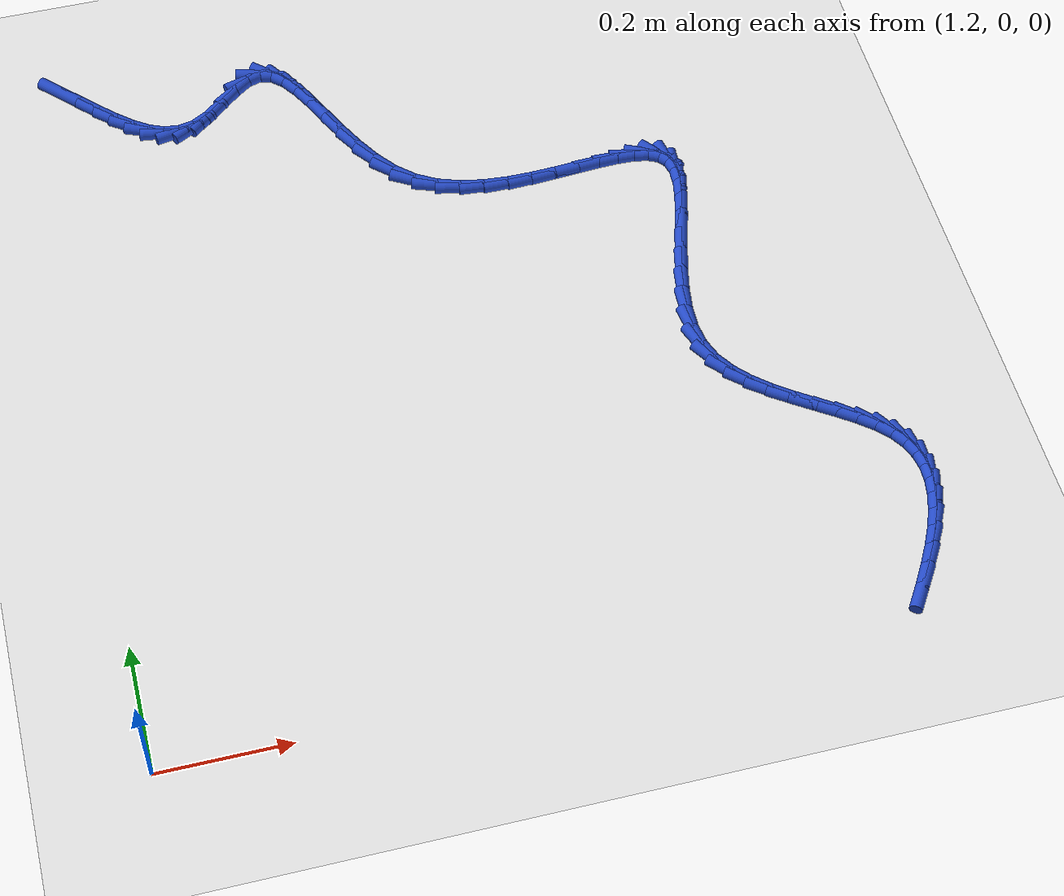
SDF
<sdf version="1.6">
 <world name="default">
  <model name="ground_plane">
   <static>1</static>
   <link name="link">
    <collision name="collision">
     <geometry><plane><normal>0 0 1</normal><size>100 100</size></plane></geometry>
     <surface><friction><ode><mu>100</mu><mu2>50</mu2></ode></friction></surface>
    </collision>
    <visual name="visual">
     <cast_shadows>0</cast_shadows>
     <geometry><plane><normal>0 0 1</normal><size>100 100</size></plane></geometry>
     <material>
      <script><uri>file://media/materials/scripts/gazebo.material</uri><name>Gazebo/WhiteGlow</name></script>
     </material>
    </visual>
   </link>
  </model>
  <model name="line">
   <link name="link_67">
    <pose>1.2538343814853161 1.2382673829130102 0.01 0 1.57 -0.785566757976279</pose>
    <collision name="collision">
     <geometry><cylinder><radius>0.01</radius><length>0.08</length></cylinder></geometry>
    </collision>
    <visual name="visual">
     <material>
      <script><name>Gazebo/Blue</name><uri>file://media/materials/scripts/gazebo.material</uri></script>
     </material>
     <geometry><cylinder><radius>0.01</radius><length>0.08</length></cylinder></geometry>
    </visual>
   </link>
   <link name="link_68">
    <pose>1.28186383717866 1.2102284743973273 0.01 0 1.57 -0.7882382605085606</pose>
    <collision name="collision">
     <geometry><cylinder><radius>0.01</radius><length>0.08</length></cylinder></geometry>
    </collision>
    <visual name="visual">
     <material>
      <script><name>Gazebo/Blue</name><uri>file://media/materials/scripts/gazebo.material</uri></script>
     </material>
     <geometry><cylinder><radius>0.01</radius><length>0.08</length></cylinder></geometry>
    </visual>
   </link>
   <link name="link_69">
    <pose>1.3083163606724577 1.1836252670705516 0.01 0 1.57 -0.7618387460049367</pose>
    <collision name="collision">
     <geometry><cylinder><radius>0.01</radius><length>0.08</length></cylinder></geometry>
    </collision>
    <visual name="visual">
     <material>
      <script><name>Gazebo/Blue</name><uri>file://media/materials/scripts/gazebo.material</uri></script>
     </material>
     <geometry><cylinder><radius>0.01</radius><length>0.08</length></cylinder></geometry>
    </visual>
   </link>
   <link name="link_70">
    <pose>1.333560056549744 1.1595438570009098 0.01 0 1.57 -0.6980593438315549</pose>
    <collision name="collision">
     <geometry><cylinder><radius>0.01</radius><length>0.08</length></cylinder></geometry>
    </collision>
    <visual name="visual">
     <material>
      <script><name>Gazebo/Blue</name><uri>file://media/materials/scripts/gazebo.material</uri></script>
     </material>
     <geometry><cylinder><radius>0.01</radius><length>0.08</length></cylinder></geometry>
    </visual>
   </link>
   <link name="link_71">
    <pose>1.3579630293935534 1.1390703402566276 0.01 0 1.57 -0.5829506277651483</pose>
    <collision name="collision">
     <geometry><cylinder><radius>0.01</radius><length>0.08</length></cylinder></geometry>
    </collision>
    <visual name="visual">
     <material>
      <script><name>Gazebo/Blue</name><uri>file://media/materials/scripts/gazebo.material</uri></script>
     </material>
     <geometry><cylinder><radius>0.01</radius><length>0.08</length></cylinder></geometry>
    </visual>
   </link>
   <link name="link_72">
    <pose>1.381893383786919 1.123290812905931 0.01 0 1.57 -0.39736355007476176</pose>
    <collision name="collision">
     <geometry><cylinder><radius>0.01</radius><length>0.08</length></cylinder></geometry>
    </collision>
    <visual name="visual">
     <material>
      <script><name>Gazebo/Blue</name><uri>file://media/materials/scripts/gazebo.material</uri></script>
     </material>
     <geometry><cylinder><radius>0.01</radius><length>0.08</length></cylinder></geometry>
    </visual>
   </link>
   <link name="link_73">
    <pose>1.4057192243128758 1.1132913710170473 0.01 0 1.57 -0.12934171890205653</pose>
    <collision name="collision">
     <geometry><cylinder><radius>0.01</radius><length>0.08</length></cylinder></geometry>
    </collision>
    <visual name="visual">
     <material>
      <script><name>Gazebo/Blue</name><uri>file://media/materials/scripts/gazebo.material</uri></script>
     </material>
     <geometry><cylinder><radius>0.01</radius><length>0.08</length></cylinder></geometry>
    </visual>
   </link>
   <link name="link_74">
    <pose>1.4298086555544565 1.1101581106582024 0.01 0 1.57 0.19252083070281928</pose>
    <collision name="collision">
     <geometry><cylinder><radius>0.01</radius><length>0.08</length></cylinder></geometry>
    </collision>
    <visual name="visual">
     <material>
      <script><name>Gazebo/Blue</name><uri>file://media/materials/scripts/gazebo.material</uri></script>
     </material>
     <geometry><cylinder><radius>0.01</radius><length>0.08</length></cylinder></geometry>
    </visual>
   </link>
   <link name="link_75">
    <pose>1.4545297820946967 1.114977127897623 0.01 0 1.57 0.49342976665261934</pose>
    <collision name="collision">
     <geometry><cylinder><radius>0.01</radius><length>0.08</length></cylinder></geometry>
    </collision>
    <visual name="visual">
     <material>
      <script><name>Gazebo/Blue</name><uri>file://media/materials/scripts/gazebo.material</uri></script>
     </material>
     <geometry><cylinder><radius>0.01</radius><length>0.08</length></cylinder></geometry>
    </visual>
   </link>
   <link name="link_76">
    <pose>1.4802450763413812 1.128806859006717 0.01 0 1.57 0.6768735097541512</pose>
    <collision name="collision">
     <geometry><cylinder><radius>0.01</radius><length>0.08</length></cylinder></geometry>
    </collision>
    <visual name="visual">
     <material>
      <script><name>Gazebo/Blue</name><uri>file://media/materials/scripts/gazebo.material</uri></script>
     </material>
     <geometry><cylinder><radius>0.01</radius><length>0.08</length></cylinder></geometry>
    </visual>
   </link>
   <link name="link_77">
    <pose>1.5067944361874352 1.1501393597260332 0.01 0 1.57 0.7126994125406223</pose>
    <collision name="collision">
     <geometry><cylinder><radius>0.01</radius><length>0.08</length></cylinder></geometry>
    </collision>
    <visual name="visual">
     <material>
      <script><name>Gazebo/Blue</name><uri>file://media/materials/scripts/gazebo.material</uri></script>
     </material>
     <geometry><cylinder><radius>0.01</radius><length>0.08</length></cylinder></geometry>
    </visual>
   </link>
   <link name="link_78">
    <pose>1.5330787400544876 1.1728551304662964 0.01 0 1.57 0.6140378748856712</pose>
    <collision name="collision">
     <geometry><cylinder><radius>0.01</radius><length>0.08</length></cylinder></geometry>
    </collision>
    <visual name="visual">
     <material>
      <script><name>Gazebo/Blue</name><uri>file://media/materials/scripts/gazebo.material</uri></script>
     </material>
     <geometry><cylinder><radius>0.01</radius><length>0.08</length></cylinder></geometry>
    </visual>
   </link>
   <link name="link_79">
    <pose>1.557900867419528 1.1903533956165042 0.01 0 1.57 0.27306151013533486</pose>
    <collision name="collision">
     <geometry><cylinder><radius>0.01</radius><length>0.08</length></cylinder></geometry>
    </collision>
    <visual name="visual">
     <material>
      <script><name>Gazebo/Blue</name><uri>file://media/materials/scripts/gazebo.material</uri></script>
     </material>
     <geometry><cylinder><radius>0.01</radius><length>0.08</length></cylinder></geometry>
    </visual>
   </link>
   <link name="link_80">
    <pose>1.5801864595808888 1.1965946305407702 0.01 0 1.57 -0.28771847170197257</pose>
    <collision name="collision">
     <geometry><cylinder><radius>0.01</radius><length>0.08</length></cylinder></geometry>
    </collision>
    <visual name="visual">
     <material>
      <script><name>Gazebo/Blue</name><uri>file://media/materials/scripts/gazebo.material</uri></script>
     </material>
     <geometry><cylinder><radius>0.01</radius><length>0.08</length></cylinder></geometry>
    </visual>
   </link>
   <link name="link_81">
    <pose>1.5999969731963049 1.190732109724542 0.01 0 1.57 -0.7264145257541991</pose>
    <collision name="collision">
     <geometry><cylinder><radius>0.01</radius><length>0.08</length></cylinder></geometry>
    </collision>
    <visual name="visual">
     <material>
      <script><name>Gazebo/Blue</name><uri>file://media/materials/scripts/gazebo.material</uri></script>
     </material>
     <geometry><cylinder><radius>0.01</radius><length>0.08</length></cylinder></geometry>
    </visual>
   </link>
   <link name="link_82">
    <pose>1.6180085126071329 1.174729196392626 0.01 0 1.57 -0.9604016139994076</pose>
    <collision name="collision">
     <geometry><cylinder><radius>0.01</radius><length>0.08</length></cylinder></geometry>
    </collision>
    <visual name="visual">
     <material>
      <script><name>Gazebo/Blue</name><uri>file://media/materials/scripts/gazebo.material</uri></script>
     </material>
     <geometry><cylinder><radius>0.01</radius><length>0.08</length></cylinder></geometry>
    </visual>
   </link>
   <link name="link_83">
    <pose>1.634903222737844 1.1505768705249946 0.01 0 1.57 -1.073310563239943</pose>
    <collision name="collision">
     <geometry><cylinder><radius>0.01</radius><length>0.08</length></cylinder></geometry>
    </collision>
    <visual name="visual">
     <material>
      <script><name>Gazebo/Blue</name><uri>file://media/materials/scripts/gazebo.material</uri></script>
     </material>
     <geometry><cylinder><radius>0.01</radius><length>0.08</length></cylinder></geometry>
    </visual>
   </link>
   <link name="link_84">
    <pose>1.6513632485129093 1.1202661121016202 0.01 0 1.57 -1.1195598222980059</pose>
    <collision name="collision">
     <geometry><cylinder><radius>0.01</radius><length>0.08</length></cylinder></geometry>
    </collision>
    <visual name="visual">
     <material>
      <script><name>Gazebo/Blue</name><uri>file://media/materials/scripts/gazebo.material</uri></script>
     </material>
     <geometry><cylinder><radius>0.01</radius><length>0.08</length></cylinder></geometry>
    </visual>
   </link>
   <link name="link_85">
    <pose>1.6680707348568007 1.0857879011024745 0.01 0 1.57 -1.1223268118400533</pose>
    <collision name="collision">
     <geometry><cylinder><radius>0.01</radius><length>0.08</length></cylinder></geometry>
    </collision>
    <visual name="visual">
     <material>
      <script><name>Gazebo/Blue</name><uri>file://media/materials/scripts/gazebo.material</uri></script>
     </material>
     <geometry><cylinder><radius>0.01</radius><length>0.08</length></cylinder></geometry>
    </visual>
   </link>
   <link name="link_86">
    <pose>1.6857078266939896 1.0491332175075307 0.01 0 1.57 -1.0893143593907815</pose>
    <collision name="collision">
     <geometry><cylinder><radius>0.01</radius><length>0.08</length></cylinder></geometry>
    </collision>
    <visual name="visual">
     <material>
      <script><name>Gazebo/Blue</name><uri>file://media/materials/scripts/gazebo.material</uri></script>
     </material>
     <geometry><cylinder><radius>0.01</radius><length>0.08</length></cylinder></geometry>
    </visual>
   </link>
   <link name="link_87">
    <pose>1.7049566689489473 1.0122930412967608 0.01 0 1.57 -1.019494839847143</pose>
    <collision name="collision">
     <geometry><cylinder><radius>0.01</radius><length>0.08</length></cylinder></geometry>
    </collision>
    <visual name="visual">
     <material>
      <script><name>Gazebo/Blue</name><uri>file://media/materials/scripts/gazebo.material</uri></script>
     </material>
     <geometry><cylinder><radius>0.01</radius><length>0.08</length></cylinder></geometry>
    </visual>
   </link>
   <link name="link_88">
    <pose>1.7264994065461452 0.977258352450137 0.01 0 1.57 -0.9053327829608843</pose>
    <collision name="collision">
     <geometry><cylinder><radius>0.01</radius><length>0.08</length></cylinder></geometry>
    </collision>
    <visual name="visual">
     <material>
      <script><name>Gazebo/Blue</name><uri>file://media/materials/scripts/gazebo.material</uri></script>
     </material>
     <geometry><cylinder><radius>0.01</radius><length>0.08</length></cylinder></geometry>
    </visual>
   </link>
   <link name="link_89">
    <pose>1.7510181844100556 0.9460201309476319 0.01 0 1.57 -0.7347056852846849</pose>
    <collision name="collision">
     <geometry><cylinder><radius>0.01</radius><length>0.08</length></cylinder></geometry>
    </collision>
    <visual name="visual">
     <material>
      <script><name>Gazebo/Blue</name><uri>file://media/materials/scripts/gazebo.material</uri></script>
     </material>
     <geometry><cylinder><radius>0.01</radius><length>0.08</length></cylinder></geometry>
    </visual>
   </link>
   <link name="link_90">
    <pose>1.7791933573349288 0.9205658966634219 0.01 0 1.57 -0.5236528981676696</pose>
    <collision name="collision">
     <geometry><cylinder><radius>0.01</radius><length>0.08</length></cylinder></geometry>
    </collision>
    <visual name="visual">
     <material>
      <script><name>Gazebo/Blue</name><uri>file://media/materials/scripts/gazebo.material</uri></script>
     </material>
     <geometry><cylinder><radius>0.01</radius><length>0.08</length></cylinder></geometry>
    </visual>
   </link>
   <link name="link_91">
    <pose>1.8112709154444293 0.9020435949551331 0.01 0 1.57 -0.33770255946773026</pose>
    <collision name="collision">
     <geometry><cylinder><radius>0.01</radius><length>0.08</length></cylinder></geometry>
    </collision>
    <visual name="visual">
     <material>
      <script><name>Gazebo/Blue</name><uri>file://media/materials/scripts/gazebo.material</uri></script>
     </material>
     <geometry><cylinder><radius>0.01</radius><length>0.08</length></cylinder></geometry>
    </visual>
   </link>
   <link name="link_92">
    <pose>1.8464992892119563 0.8896730086989127 0.01 0 1.57 -0.19151743830005274</pose>
    <collision name="collision">
     <geometry><cylinder><radius>0.01</radius><length>0.08</length></cylinder></geometry>
    </collision>
    <visual name="visual">
     <material>
      <script><name>Gazebo/Blue</name><uri>file://media/materials/scripts/gazebo.material</uri></script>
     </material>
     <geometry><cylinder><radius>0.01</radius><length>0.08</length></cylinder></geometry>
    </visual>
   </link>
   <link name="link_93">
    <pose>1.88398741299645 0.8824042916072453 0.01 0 1.57 -0.082594951936038</pose>
    <collision name="collision">
     <geometry><cylinder><radius>0.01</radius><length>0.08</length></cylinder></geometry>
    </collision>
    <visual name="visual">
     <material>
      <script><name>Gazebo/Blue</name><uri>file://media/materials/scripts/gazebo.material</uri></script>
     </material>
     <geometry><cylinder><radius>0.01</radius><length>0.08</length></cylinder></geometry>
    </visual>
   </link>
   <link name="link_94">
    <pose>1.9228442211568515 0.8791875973926139 0.01 0 1.57 -0.00545363223273143</pose>
    <collision name="collision">
     <geometry><cylinder><radius>0.01</radius><length>0.08</length></cylinder></geometry>
    </collision>
    <visual name="visual">
     <material>
      <script><name>Gazebo/Blue</name><uri>file://media/materials/scripts/gazebo.material</uri></script>
     </material>
     <geometry><cylinder><radius>0.01</radius><length>0.08</length></cylinder></geometry>
    </visual>
   </link>
   <link name="link_95">
    <pose>1.9621786480521008 0.8789730797675025 0.01 0 1.57 0.044620130874636565</pose>
    <collision name="collision">
     <geometry><cylinder><radius>0.01</radius><length>0.08</length></cylinder></geometry>
    </collision>
    <visual name="visual">
     <material>
      <script><name>Gazebo/Blue</name><uri>file://media/materials/scripts/gazebo.material</uri></script>
     </material>
     <geometry><cylinder><radius>0.01</radius><length>0.08</length></cylinder></geometry>
    </visual>
   </link>
   <link name="link_96">
    <pose>2.00109962804114 0.8807108924443945 0.01 0 1.57 0.07007498911915154</pose>
    <collision name="collision">
     <geometry><cylinder><radius>0.01</radius><length>0.08</length></cylinder></geometry>
    </collision>
    <visual name="visual">
     <material>
      <script><name>Gazebo/Blue</name><uri>file://media/materials/scripts/gazebo.material</uri></script>
     </material>
     <geometry><cylinder><radius>0.01</radius><length>0.08</length></cylinder></geometry>
    </visual>
   </link>
   <link name="link_97">
    <pose>2.03871609548291 0.8833511891357735 0.01 0 1.57 0.07026448233679902</pose>
    <collision name="collision">
     <geometry><cylinder><radius>0.01</radius><length>0.08</length></cylinder></geometry>
    </collision>
    <visual name="visual">
     <material>
      <script><name>Gazebo/Blue</name><uri>file://media/materials/scripts/gazebo.material</uri></script>
     </material>
     <geometry><cylinder><radius>0.01</radius><length>0.08</length></cylinder></geometry>
    </visual>
   </link>
   <link name="link_98">
    <pose>2.074136984736351 0.8858441235541231 0.01 0 1.57 0.040051435700480364</pose>
    <collision name="collision">
     <geometry><cylinder><radius>0.01</radius><length>0.08</length></cylinder></geometry>
    </collision>
    <visual name="visual">
     <material>
      <script><name>Gazebo/Blue</name><uri>file://media/materials/scripts/gazebo.material</uri></script>
     </material>
     <geometry><cylinder><radius>0.01</radius><length>0.08</length></cylinder></geometry>
    </visual>
   </link>
   <link name="link_99">
    <pose>2.106471230160404 0.887139849411927 0.01 0 1.57 -0.03353626542487102</pose>
    <collision name="collision">
     <geometry><cylinder><radius>0.01</radius><length>0.08</length></cylinder></geometry>
    </collision>
    <visual name="visual">
     <material>
      <script><name>Gazebo/Blue</name><uri>file://media/materials/scripts/gazebo.material</uri></script>
     </material>
     <geometry><cylinder><radius>0.01</radius><length>0.08</length></cylinder></geometry>
    </visual>
   </link>
   <link name="link_100">
    <pose>2.1348277661140105 0.8861885204216685 0.01 0 1.57 -0.17893545830406263</pose>
    <collision name="collision">
     <geometry><cylinder><radius>0.01</radius><length>0.08</length></cylinder></geometry>
    </collision>
    <visual name="visual">
     <material>
      <script><name>Gazebo/Blue</name><uri>file://media/materials/scripts/gazebo.material</uri></script>
     </material>
     <geometry><cylinder><radius>0.01</radius><length>0.08</length></cylinder></geometry>
    </visual>
   </link>
   <link name="link_101">
    <pose>2.1583155269561107 0.8819402902958317 0.01 0 1.57 -0.4514358436486448</pose>
    <collision name="collision">
     <geometry><cylinder><radius>0.01</radius><length>0.08</length></cylinder></geometry>
    </collision>
    <visual name="visual">
     <material>
      <script><name>Gazebo/Blue</name><uri>file://media/materials/scripts/gazebo.material</uri></script>
     </material>
     <geometry><cylinder><radius>0.01</radius><length>0.08</length></cylinder></geometry>
    </visual>
   </link>
   <link name="link_102">
    <pose>2.176043447045646 0.8733453127468996 0.01 0 1.57 -0.9001134383795548</pose>
    <collision name="collision">
     <geometry><cylinder><radius>0.01</radius><length>0.08</length></cylinder></geometry>
    </collision>
    <visual name="visual">
     <material>
      <script><name>Gazebo/Blue</name><uri>file://media/materials/scripts/gazebo.material</uri></script>
     </material>
     <geometry><cylinder><radius>0.01</radius><length>0.08</length></cylinder></geometry>
    </visual>
   </link>
   <link name="link_103">
    <pose>2.18713429291404 0.8593658356881354 0.01 0 1.57 -1.3524003817196848</pose>
    <collision name="collision">
     <geometry><cylinder><radius>0.01</radius><length>0.08</length></cylinder></geometry>
    </collision>
    <visual name="visual">
     <material>
      <script><name>Gazebo/Blue</name><uri>file://media/materials/scripts/gazebo.material</uri></script>
     </material>
     <geometry><cylinder><radius>0.01</radius><length>0.08</length></cylinder></geometry>
    </visual>
   </link>
   <link name="link_104">
    <pose>2.191507560521084 0.839660729756795 0.01 0 1.57 1.5219206567587855</pose>
    <collision name="collision">
     <geometry><cylinder><radius>0.01</radius><length>0.08</length></cylinder></geometry>
    </collision>
    <visual name="visual">
     <material>
      <script><name>Gazebo/Blue</name><uri>file://media/materials/scripts/gazebo.material</uri></script>
     </material>
     <geometry><cylinder><radius>0.01</radius><length>0.08</length></cylinder></geometry>
    </visual>
   </link>
   <link name="link_105">
    <pose>2.190298955051684 0.814952261710799 0.01 0 1.57 1.3809874458709517</pose>
    <collision name="collision">
     <geometry><cylinder><radius>0.01</radius><length>0.08</length></cylinder></geometry>
    </collision>
    <visual name="visual">
     <material>
      <script><name>Gazebo/Blue</name><uri>file://media/materials/scripts/gazebo.material</uri></script>
     </material>
     <geometry><cylinder><radius>0.01</radius><length>0.08</length></cylinder></geometry>
    </visual>
   </link>
   <link name="link_106">
    <pose>2.1847466439241625 0.7860522864638533 0.01 0 1.57 1.3087498475771182</pose>
    <collision name="collision">
     <geometry><cylinder><radius>0.01</radius><length>0.08</length></cylinder></geometry>
    </collision>
    <visual name="visual">
     <material>
      <script><name>Gazebo/Blue</name><uri>file://media/materials/scripts/gazebo.material</uri></script>
     </material>
     <geometry><cylinder><radius>0.01</radius><length>0.08</length></cylinder></geometry>
    </visual>
   </link>
   <link name="link_107">
    <pose>2.176088794556841 0.753772658929664 0.01 0 1.57 1.2774715504518177</pose>
    <collision name="collision">
     <geometry><cylinder><radius>0.01</radius><length>0.08</length></cylinder></geometry>
    </collision>
    <visual name="visual">
     <material>
      <script><name>Gazebo/Blue</name><uri>file://media/materials/scripts/gazebo.material</uri></script>
     </material>
     <geometry><cylinder><radius>0.01</radius><length>0.08</length></cylinder></geometry>
    </visual>
   </link>
   <link name="link_108">
    <pose>2.165563574368041 0.7189252340219373 0.01 0 1.57 1.2749987658873705</pose>
    <collision name="collision">
     <geometry><cylinder><radius>0.01</radius><length>0.08</length></cylinder></geometry>
    </collision>
    <visual name="visual">
     <material>
      <script><name>Gazebo/Blue</name><uri>file://media/materials/scripts/gazebo.material</uri></script>
     </material>
     <geometry><cylinder><radius>0.01</radius><length>0.08</length></cylinder></geometry>
    </visual>
   </link>
   <link name="link_109">
    <pose>2.154409150776083 0.6823218666543788 0.01 0 1.57 1.2969932521439491</pose>
    <collision name="collision">
     <geometry><cylinder><radius>0.01</radius><length>0.08</length></cylinder></geometry>
    </collision>
    <visual name="visual">
     <material>
      <script><name>Gazebo/Blue</name><uri>file://media/materials/scripts/gazebo.material</uri></script>
     </material>
     <geometry><cylinder><radius>0.01</radius><length>0.08</length></cylinder></geometry>
    </visual>
   </link>
   <link name="link_110">
    <pose>2.14386369119929 0.6447744117406947 0.01 0 1.57 1.3439214933272465</pose>
    <collision name="collision">
     <geometry><cylinder><radius>0.01</radius><length>0.08</length></cylinder></geometry>
    </collision>
    <visual name="visual">
     <material>
      <script><name>Gazebo/Blue</name><uri>file://media/materials/scripts/gazebo.material</uri></script>
     </material>
     <geometry><cylinder><radius>0.01</radius><length>0.08</length></cylinder></geometry>
    </visual>
   </link>
   <link name="link_111">
    <pose>2.1351653630559815 0.6070947241945909 0.01 0 1.57 1.4202410493724342</pose>
    <collision name="collision">
     <geometry><cylinder><radius>0.01</radius><length>0.08</length></cylinder></geometry>
    </collision>
    <visual name="visual">
     <material>
      <script><name>Gazebo/Blue</name><uri>file://media/materials/scripts/gazebo.material</uri></script>
     </material>
     <geometry><cylinder><radius>0.01</radius><length>0.08</length></cylinder></geometry>
    </visual>
   </link>
   <link name="link_112">
    <pose>2.129552333764481 0.5700946589297733 0.01 0 1.57 1.5344953473322347</pose>
    <collision name="collision">
     <geometry><cylinder><radius>0.01</radius><length>0.08</length></cylinder></geometry>
    </collision>
    <visual name="visual">
     <material>
      <script><name>Gazebo/Blue</name><uri>file://media/materials/scripts/gazebo.material</uri></script>
     </material>
     <geometry><cylinder><radius>0.01</radius><length>0.08</length></cylinder></geometry>
    </visual>
   </link>
   <link name="link_113">
    <pose>2.1282627707431083 0.5345860708599487 0.01 0 1.57 -1.4428427610111758</pose>
    <collision name="collision">
     <geometry><cylinder><radius>0.01</radius><length>0.08</length></cylinder></geometry>
    </collision>
    <visual name="visual">
     <material>
      <script><name>Gazebo/Blue</name><uri>file://media/materials/scripts/gazebo.material</uri></script>
     </material>
     <geometry><cylinder><radius>0.01</radius><length>0.08</length></cylinder></geometry>
    </visual>
   </link>
   <link name="link_114">
    <pose>2.132534841410186 0.5013808148988219 0.01 0 1.57 -1.2225296229217635</pose>
    <collision name="collision">
     <geometry><cylinder><radius>0.01</radius><length>0.08</length></cylinder></geometry>
    </collision>
    <visual name="visual">
     <material>
      <script><name>Gazebo/Blue</name><uri>file://media/materials/scripts/gazebo.material</uri></script>
     </material>
     <geometry><cylinder><radius>0.01</radius><length>0.08</length></cylinder></geometry>
    </visual>
   </link>
   <link name="link_115">
    <pose>2.143482142351235 0.4712284004880938 0.01 0 1.57 -1.0036013262684376</pose>
    <collision name="collision">
     <geometry><cylinder><radius>0.01</radius><length>0.08</length></cylinder></geometry>
    </collision>
    <visual name="visual">
     <material>
      <script><name>Gazebo/Blue</name><uri>file://media/materials/scripts/gazebo.material</uri></script>
     </material>
     <geometry><cylinder><radius>0.01</radius><length>0.08</length></cylinder></geometry>
    </visual>
   </link>
   <link name="link_116">
    <pose>2.1607391733387304 0.4441380755902887 0.01 0 1.57 -0.8339720589544165</pose>
    <collision name="collision">
     <geometry><cylinder><radius>0.01</radius><length>0.08</length></cylinder></geometry>
    </collision>
    <visual name="visual">
     <material>
      <script><name>Gazebo/Blue</name><uri>file://media/materials/scripts/gazebo.material</uri></script>
     </material>
     <geometry><cylinder><radius>0.01</radius><length>0.08</length></cylinder></geometry>
    </visual>
   </link>
   <link name="link_117">
    <pose>2.182971267966476 0.4196340378435261 0.01 0 1.57 -0.7139525091937021</pose>
    <collision name="collision">
     <geometry><cylinder><radius>0.01</radius><length>0.08</length></cylinder></geometry>
    </collision>
    <visual name="visual">
     <material>
      <script><name>Gazebo/Blue</name><uri>file://media/materials/scripts/gazebo.material</uri></script>
     </material>
     <geometry><cylinder><radius>0.01</radius><length>0.08</length></cylinder></geometry>
    </visual>
   </link>
   <link name="link_118">
    <pose>2.2088269237744105 0.39723205874233153 0.01 0 1.57 -0.6363725312759138</pose>
    <collision name="collision">
     <geometry><cylinder><radius>0.01</radius><length>0.08</length></cylinder></geometry>
    </collision>
    <visual name="visual">
     <material>
      <script><name>Gazebo/Blue</name><uri>file://media/materials/scripts/gazebo.material</uri></script>
     </material>
     <geometry><cylinder><radius>0.01</radius><length>0.08</length></cylinder></geometry>
    </visual>
   </link>
   <link name="link_119">
    <pose>2.236954638302474 0.37644790978123127 0.01 0 1.57 -0.5947650792054809</pose>
    <collision name="collision">
     <geometry><cylinder><radius>0.01</radius><length>0.08</length></cylinder></geometry>
    </collision>
    <visual name="visual">
     <material>
      <script><name>Gazebo/Blue</name><uri>file://media/materials/scripts/gazebo.material</uri></script>
     </material>
     <geometry><cylinder><radius>0.01</radius><length>0.08</length></cylinder></geometry>
    </visual>
   </link>
   <link name="link_120">
    <pose>2.2660029090906066 0.35679736245475113 0.01 0 1.57 -0.5861364892936376</pose>
    <collision name="collision">
     <geometry><cylinder><radius>0.01</radius><length>0.08</length></cylinder></geometry>
    </collision>
    <visual name="visual">
     <material>
      <script><name>Gazebo/Blue</name><uri>file://media/materials/scripts/gazebo.material</uri></script>
     </material>
     <geometry><cylinder><radius>0.01</radius><length>0.08</length></cylinder></geometry>
    </visual>
   </link>
   <link name="link_121">
    <pose>2.294620233678749 0.3377961882574171 0.01 0 1.57 -0.6120157262769792</pose>
    <collision name="collision">
     <geometry><cylinder><radius>0.01</radius><length>0.08</length></cylinder></geometry>
    </collision>
    <visual name="visual">
     <material>
      <script><name>Gazebo/Blue</name><uri>file://media/materials/scripts/gazebo.material</uri></script>
     </material>
     <geometry><cylinder><radius>0.01</radius><length>0.08</length></cylinder></geometry>
    </visual>
   </link>
   <link name="link_122">
    <pose>2.3214551096068394 0.3189601586837548 0.01 0 1.57 -0.6797216449581143</pose>
    <collision name="collision">
     <geometry><cylinder><radius>0.01</radius><length>0.08</length></cylinder></geometry>
    </collision>
    <visual name="visual">
     <material>
      <script><name>Gazebo/Blue</name><uri>file://media/materials/scripts/gazebo.material</uri></script>
     </material>
     <geometry><cylinder><radius>0.01</radius><length>0.08</length></cylinder></geometry>
    </visual>
   </link>
   <link name="link_123">
    <pose>2.345156034414818 0.2998050452282906 0.01 0 1.57 -0.8043452122651773</pose>
    <collision name="collision">
     <geometry><cylinder><radius>0.01</radius><length>0.08</length></cylinder></geometry>
    </collision>
    <visual name="visual">
     <material>
      <script><name>Gazebo/Blue</name><uri>file://media/materials/scripts/gazebo.material</uri></script>
     </material>
     <geometry><cylinder><radius>0.01</radius><length>0.08</length></cylinder></geometry>
    </visual>
   </link>
   <link name="link_124">
    <pose>2.3643719877498857 0.2798467669817271 0.01 0 1.57 -0.9924657310240199</pose>
    <collision name="collision">
     <geometry><cylinder><radius>0.01</radius><length>0.08</length></cylinder></geometry>
    </collision>
    <visual name="visual">
     <material>
      <script><name>Gazebo/Blue</name><uri>file://media/materials/scripts/gazebo.material</uri></script>
     </material>
     <geometry><cylinder><radius>0.01</radius><length>0.08</length></cylinder></geometry>
    </visual>
   </link>
   <link name="link_125">
    <pose>2.378159333249848 0.2587259628321678 0.01 0 1.57 -1.2040164624177105</pose>
    <collision name="collision">
     <geometry><cylinder><radius>0.01</radius><length>0.08</length></cylinder></geometry>
    </collision>
    <visual name="visual">
     <material>
      <script><name>Gazebo/Blue</name><uri>file://media/materials/scripts/gazebo.material</uri></script>
     </material>
     <geometry><cylinder><radius>0.01</radius><length>0.08</length></cylinder></geometry>
    </visual>
   </link>
   <link name="link_126">
    <pose>2.3867227658733436 0.23643483101462928 0.01 0 1.57 -1.4121473406769054</pose>
    <collision name="collision">
     <geometry><cylinder><radius>0.01</radius><length>0.08</length></cylinder></geometry>
    </collision>
    <visual name="visual">
     <material>
      <script><name>Gazebo/Blue</name><uri>file://media/materials/scripts/gazebo.material</uri></script>
     </material>
     <geometry><cylinder><radius>0.01</radius><length>0.08</length></cylinder></geometry>
    </visual>
   </link>
   <link name="link_127">
    <pose>2.3904678573216365 0.21302706777882774 0.01 0 1.57 1.5435182981079572</pose>
    <collision name="collision">
     <geometry><cylinder><radius>0.01</radius><length>0.08</length></cylinder></geometry>
    </collision>
    <visual name="visual">
     <material>
      <script><name>Gazebo/Blue</name><uri>file://media/materials/scripts/gazebo.material</uri></script>
     </material>
     <geometry><cylinder><radius>0.01</radius><length>0.08</length></cylinder></geometry>
    </visual>
   </link>
   <link name="link_128">
    <pose>2.389800179295988 0.18855636937447925 0.01 0 1.57 1.3893416108281191</pose>
    <collision name="collision">
     <geometry><cylinder><radius>0.01</radius><length>0.08</length></cylinder></geometry>
    </collision>
    <visual name="visual">
     <material>
      <script><name>Gazebo/Blue</name><uri>file://media/materials/scripts/gazebo.material</uri></script>
     </material>
     <geometry><cylinder><radius>0.01</radius><length>0.08</length></cylinder></geometry>
    </visual>
   </link>
   <link name="link_129">
    <pose>2.385125303497664 0.1630764320513001 0.01 0 1.57 1.2673803292487393</pose>
    <collision name="collision">
     <geometry><cylinder><radius>0.01</radius><length>0.08</length></cylinder></geometry>
    </collision>
    <visual name="visual">
     <material>
      <script><name>Gazebo/Blue</name><uri>file://media/materials/scripts/gazebo.material</uri></script>
     </material>
     <geometry><cylinder><radius>0.01</radius><length>0.08</length></cylinder></geometry>
    </visual>
   </link>
   <link name="link_130">
    <pose>2.376848801627926 0.1366409520590063 0.01 0 1.57 1.173451980922061</pose>
    <collision name="collision">
     <geometry><cylinder><radius>0.01</radius><length>0.08</length></cylinder></geometry>
    </collision>
    <visual name="visual">
     <material>
      <script><name>Gazebo/Blue</name><uri>file://media/materials/scripts/gazebo.material</uri></script>
     </material>
     <geometry><cylinder><radius>0.01</radius><length>0.08</length></cylinder></geometry>
    </visual>
   </link>
   <link name="link_131">
    <pose>2.3653762453880387 0.109303625647314 0.01 0 1.57 1.102326696748602</pose>
    <collision name="collision">
     <geometry><cylinder><radius>0.01</radius><length>0.08</length></cylinder></geometry>
    </collision>
    <visual name="visual">
     <material>
      <script><name>Gazebo/Blue</name><uri>file://media/materials/scripts/gazebo.material</uri></script>
     </material>
     <geometry><cylinder><radius>0.01</radius><length>0.08</length></cylinder></geometry>
    </visual>
   </link>
   <link name="link_132">
    <pose>2.3511132064792646 0.08111814906593942 0.01 0 1.57 1.049364359680365</pose>
    <collision name="collision">
     <geometry><cylinder><radius>0.01</radius><length>0.08</length></cylinder></geometry>
    </collision>
    <visual name="visual">
     <material>
      <script><name>Gazebo/Blue</name><uri>file://media/materials/scripts/gazebo.material</uri></script>
     </material>
     <geometry><cylinder><radius>0.01</radius><length>0.08</length></cylinder></geometry>
    </visual>
   </link>
   <link name="link_133">
    <pose>2.3344652566028685 0.05213821856459866 0.01 0 1.57 1.0109432501321853</pose>
    <collision name="collision">
     <geometry><cylinder><radius>0.01</radius><length>0.08</length></cylinder></geometry>
    </collision>
    <visual name="visual">
     <material>
      <script><name>Gazebo/Blue</name><uri>file://media/materials/scripts/gazebo.material</uri></script>
     </material>
     <geometry><cylinder><radius>0.01</radius><length>0.08</length></cylinder></geometry>
    </visual>
   </link>
   <link name="link_134">
    <pose>2.315837967460114 0.022417530393008304 0.01 0 1.57 0.9844068536728537</pose>
    <collision name="collision">
     <geometry><cylinder><radius>0.01</radius><length>0.08</length></cylinder></geometry>
    </collision>
    <visual name="visual">
     <material>
      <script><name>Gazebo/Blue</name><uri>file://media/materials/scripts/gazebo.material</uri></script>
     </material>
     <geometry><cylinder><radius>0.01</radius><length>0.08</length></cylinder></geometry>
    </visual>
   </link>
  </model>
 </world>
</sdf>
